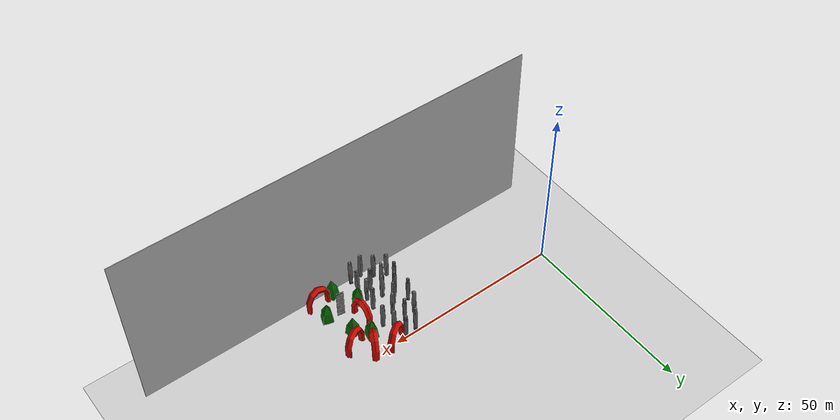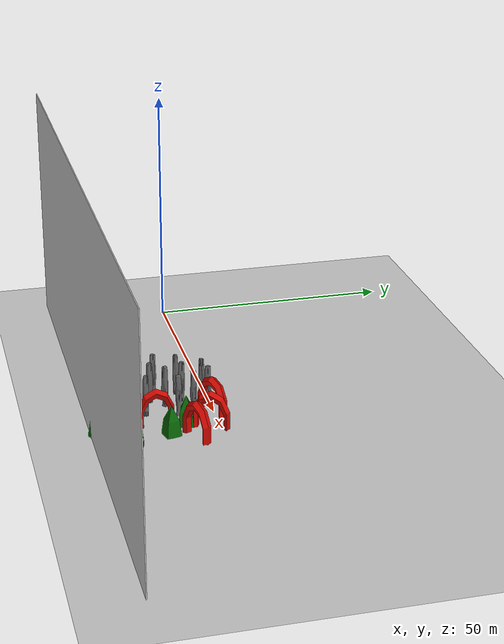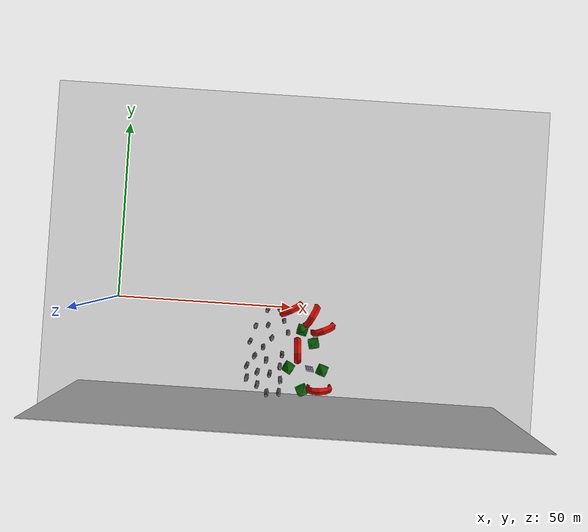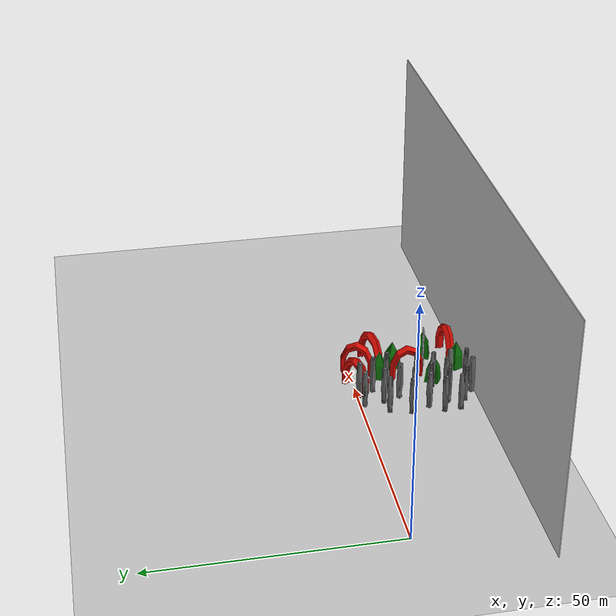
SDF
<sdf version="1.4">
 <world name="default">
  <model name="ground_plane">
   <static>1</static>
   <link name="link">
    <collision name="collision">
     <geometry><plane><normal>0 0 1</normal><size>1000 1000</size></plane></geometry>
     <surface>
      <contact><collide_bitmask>65535</collide_bitmask></contact>
      <friction><ode><mu>100</mu><mu2>50</mu2></ode></friction>
     </surface>
    </collision>
    <visual name="visual">
     <cast_shadows>0</cast_shadows>
     <geometry><plane><normal>0 0 1</normal><size>1000 1000</size></plane></geometry>
    </visual>
   </link>
  </model>
  <model name="wall_right">
   <static>1</static>
   <link name="link">
    <pose>0 0 25.0 0 0 0</pose>
    <collision name="collision"><geometry><box><size>120.0 0.2 50.0</size></box></geometry></collision>
    <visual name="visual">
     <cast_shadows>0</cast_shadows>
     <geometry><box><size>120.0 0.2 50.0</size></box></geometry>
    </visual>
   </link>
   <pose>50.0 -25.0 0 0 0 0</pose>
  </model>
  <include><uri>model://sun</uri></include>
  <include>
   <name>columnSimple Stone135</name>
   <uri>model://Simple Stone</uri>
   <pose>38.68428039550781 -20.403722763061523 0 0 0 3.27896877895</pose>
   <static>true</static>
  </include>
  <include>
   <name>columnSimple Stone136</name>
   <uri>model://Simple Stone</uri>
   <pose>38.52351760864258 -16.90391254425049 0 0 0 5.77950753732</pose>
   <static>true</static>
  </include>
  <include>
   <name>columnSimple Stone137</name>
   <uri>model://Simple Stone</uri>
   <pose>39.04423522949219 -9.99544906616211 0 0 0 5.68958425504</pose>
   <static>true</static>
  </include>
  <include>
   <name>columnSimple Stone143</name>
   <uri>model://Simple Stone</uri>
   <pose>41.72933578491211 -22.136393547058105 0 0 0 1.43371300263</pose>
   <static>true</static>
  </include>
  <include>
   <name>columnSimple Stone144</name>
   <uri>model://Simple Stone</uri>
   <pose>41.642799377441406 -18.499084949493408 0 0 0 1.09249706413</pose>
   <static>true</static>
  </include>
  <include>
   <name>columnSimple Stone145</name>
   <uri>model://Simple Stone</uri>
   <pose>40.54673767089844 -14.038755416870117 0 0 0 5.51075140264</pose>
   <static>true</static>
  </include>
  <include>
   <name>columnSimple Stone146</name>
   <uri>model://Simple Stone</uri>
   <pose>40.35725784301758 -5.589147567749023 0 0 0 2.98633341415</pose>
   <static>true</static>
  </include>
  <include>
   <name>columnSimple Stone151</name>
   <uri>model://Simple Stone</uri>
   <pose>43.90459442138672 -15.038402557373047 0 0 0 1.63157712984</pose>
   <static>true</static>
  </include>
  <include>
   <name>columnSimple Stone152</name>
   <uri>model://Simple Stone</uri>
   <pose>42.8243522644043 -11.376618385314941 0 0 0 0.234592841916</pose>
   <static>true</static>
  </include>
  <include>
   <name>columnSimple Stone153</name>
   <uri>model://Simple Stone</uri>
   <pose>43.82415008544922 -5.083986282348633 0 0 0 5.75733106616</pose>
   <static>true</static>
  </include>
  <include>
   <name>columnSimple Stone154</name>
   <uri>model://Simple Stone</uri>
   <pose>43.40000915527344 -0.9339542388916016 0 0 0 4.25964800054</pose>
   <static>true</static>
  </include>
  <include>
   <name>columnSimple Stone160</name>
   <uri>model://Simple Stone</uri>
   <pose>44.572940826416016 -24.30235129594803 0 0 0 0.409844207157</pose>
   <static>true</static>
  </include>
  <include>
   <name>columnSimple Stone161</name>
   <uri>model://Simple Stone</uri>
   <pose>45.13249206542969 -18.809847831726074 0 0 0 6.06829951486</pose>
   <static>true</static>
  </include>
  <include>
   <name>columnSimple Stone162</name>
   <uri>model://Simple Stone</uri>
   <pose>45.100364685058594 -8.71310806274414 0 0 0 2.27426539051</pose>
   <static>true</static>
  </include>
  <include>
   <name>columnSimple Stone163</name>
   <uri>model://Simple Stone</uri>
   <pose>46.86714172363281 -0.4304542541503906 0 0 0 5.56279685819</pose>
   <static>true</static>
  </include>
  <include>
   <name>columnSimple Stone168</name>
   <uri>model://Simple Stone</uri>
   <pose>48.05317687988281 -23.899277210235596 0 0 0 1.21786274559</pose>
   <static>true</static>
  </include>
  <include>
   <name>columnSimple Stone169</name>
   <uri>model://Simple Stone</uri>
   <pose>48.25356674194336 -20.401512622833252 0 0 0 4.98951778529</pose>
   <static>true</static>
  </include>
  <include>
   <name>columnSimple Stone170</name>
   <uri>model://Simple Stone</uri>
   <pose>47.88503646850586 -16.642361640930176 0 0 0 2.81712255965</pose>
   <static>true</static>
  </include>
  <include>
   <name>columnSimple Stone171</name>
   <uri>model://Simple Stone</uri>
   <pose>48.29909896850586 -13.163415908813477 0 0 0 6.27897405562</pose>
   <static>true</static>
  </include>
  <include>
   <name>columnSimple Stone172</name>
   <uri>model://Simple Stone</uri>
   <pose>48.293392181396484 -3.630504608154297 0 0 0 1.88399354827</pose>
   <static>true</static>
  </include>
  <include>
   <name>columnSimple Stone176</name>
   <uri>model://Simple Stone</uri>
   <pose>49.58479309082031 -6.887311935424805 0 0 0 1.57627686552</pose>
   <static>true</static>
  </include>
  <include>
   <name>mixedSimple Pyramid0</name>
   <uri>model://Simple Pyramid</uri>
   <pose>50.36028343439102 -17.34108018875122 0 0 0 1.85782441175</pose>
   <static>true</static>
  </include>
  <include>
   <name>mixedSimple U1</name>
   <uri>model://Simple U</uri>
   <pose>52.659902572631836 -12.059288024902344 0 0 0 4.77664772566</pose>
   <static>true</static>
  </include>
  <include>
   <name>mixedSimple U2</name>
   <uri>model://Simple U</uri>
   <pose>50.069897182285786 -0.2742290496826172 0 0 0 0.49937263025</pose>
   <static>true</static>
  </include>
  <include>
   <name>mixedSimple Pyramid5</name>
   <uri>model://Simple Pyramid</uri>
   <pose>54.619526386260986 -23.54963779449463 0 0 0 1.24194791438</pose>
   <static>true</static>
  </include>
  <include>
   <name>mixedfence_high6</name>
   <uri>model://fence_high</uri>
   <pose>55.2719612121582 -16.37907886505127 0 0 0 4.56575588401</pose>
   <static>true</static>
  </include>
  <include>
   <name>mixedSimple Pyramid7</name>
   <uri>model://Simple Pyramid</uri>
   <pose>53.71615195274353 -6.291408538818359 0 0 0 2.12562520289</pose>
   <static>true</static>
  </include>
  <include>
   <name>mixedSimple U8</name>
   <uri>model://Simple U</uri>
   <pose>56.08413743972778 -1.8820228576660156 0 0 0 4.23827518453</pose>
   <static>true</static>
  </include>
  <include>
   <name>mixedSimple U13</name>
   <uri>model://Simple U</uri>
   <pose>59.50749588012695 -22.47363567352295 0 0 0 3.23306158244</pose>
   <static>true</static>
  </include>
  <include>
   <name>mixedSimple Pyramid14</name>
   <uri>model://Simple Pyramid</uri>
   <pose>60.14757823944092 -17.50973415374756 0 0 0 0.451400911681</pose>
   <static>true</static>
  </include>
  <include>
   <name>mixedSimple Pyramid15</name>
   <uri>model://Simple Pyramid</uri>
   <pose>57.177284717559814 -9.904460906982422 0 0 0 1.00865946994</pose>
   <static>true</static>
  </include>
  <include>
   <name>mixedSimple U16</name>
   <uri>model://Simple U</uri>
   <pose>59.546791076660156 -5.495893478393555 0 0 0 3.55553787527</pose>
   <static>true</static>
  </include>
 </world>
</sdf>
